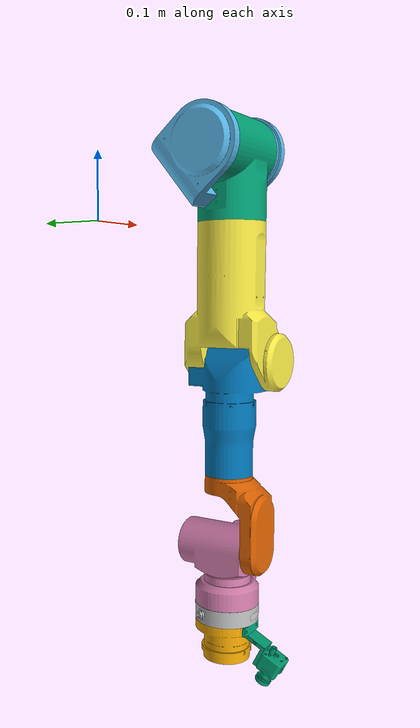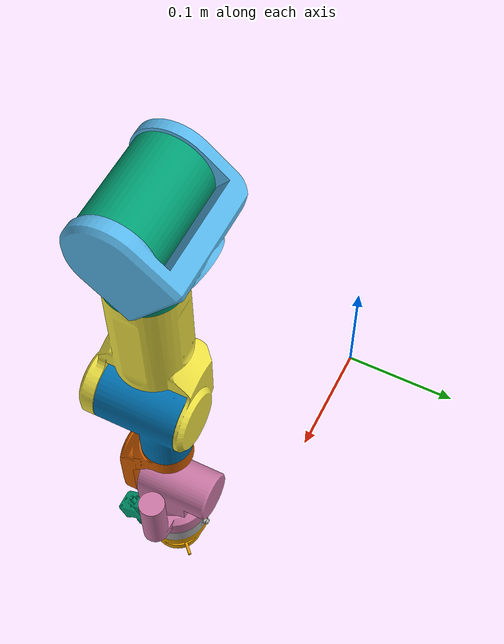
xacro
<?xml version="1.0"?>
<!-- Direct xacro translation of right_arm.urdf. -->
<robot xmlns:xacro="http://www.ros.org/wiki/xacro" name="rby1_right_arm">

  <xacro:arg name="mesh_root" default="ruby/rby1_description_drake/meshes"/>
  <xacro:property name="mesh_dir" value="$(arg mesh_root)"/>

  <!-- Links -->

  <link name="link_right_arm_base"/>

  <link name="link_right_arm_0">
    <inertial>
      <mass value="1.26164242"/>
      <origin rpy="0 0 0" xyz="-0.00316662 0.03437181 -0.00000030"/>
      <inertia ixx="0.00230621" ixy="0.00039024" ixz="-0.00000256" iyy="0.00426418" iyz="0.00000118"
        izz="0.00432156"/>
    </inertial>

    <visual>
      <origin xyz="0 0 0" rpy="1.57079632679 0 0"/>
      <geometry>
        <mesh filename="${mesh_dir}/LINK_7.obj"/>
      </geometry>
    </visual>

    <collision>
      <origin xyz="0.025 0.018 -0.005" rpy="0 0 0"/>
      <geometry>
        <sphere radius="0.075"/>
      </geometry>
    </collision>
    <collision>
      <origin xyz="-0.015 0.018 -0.005" rpy="0 0 0"/>
      <geometry>
        <sphere radius="0.075"/>
      </geometry>
    </collision>
    <collision>
      <origin xyz="-0.05 0.018 -0.005" rpy="0 0 0"/>
      <geometry>
        <sphere radius="0.075"/>
      </geometry>
    </collision>
  </link>

  <link name="link_right_arm_1">
    <inertial>
      <mass value="2.27287031"/>
      <origin rpy="0 0 0" xyz="-0.00307855 -0.00124741 -0.01294324"/>
      <inertia ixx="0.00388490" ixy="-0.00001477" ixz="0.00011465" iyy="0.00447034"
        iyz="-0.00010023" izz="0.00288341"/>
    </inertial>

    <visual>
      <origin xyz="0 0 0" rpy="1.57079632679 0 0"/>
      <geometry>
        <mesh filename="${mesh_dir}/LINK_8.obj"/>
      </geometry>
    </visual>

    <collision>
      <origin xyz="0 0 -0.07" rpy="0 0 0"/>
      <geometry>
        <sphere radius="0.05"/>
      </geometry>
    </collision>
  </link>

  <link name="link_right_arm_2">
    <inertial>
      <mass value="2.46909439"/>
      <origin rpy="0 0 0" xyz="0.00115434 -0.00196635 -0.16192524"/>
      <inertia ixx="0.00980269" ixy="0.00005871" ixz="0.00051888" iyy="0.00924560" iyz="-0.00045932"
        izz="0.00329867"/>
    </inertial>

    <visual>
      <origin xyz="0 0 0" rpy="1.57079632679 0 0"/>
      <geometry>
        <mesh filename="${mesh_dir}/LINK_9.obj"/>
      </geometry>
    </visual>

    <collision>
      <origin xyz="0 0 -0.11" rpy="0 0 0"/>
      <geometry>
        <sphere radius="0.05"/>
      </geometry>
    </collision>
    <collision>
      <origin xyz="0 0 -0.15" rpy="0 0 0"/>
      <geometry>
        <sphere radius="0.05"/>
      </geometry>
    </collision>
    <collision>
      <origin xyz="0 0 -0.19" rpy="0 0 0"/>
      <geometry>
        <sphere radius="0.05"/>
      </geometry>
    </collision>
    <collision>
      <origin xyz="0 0 -0.23" rpy="0 0 0"/>
      <geometry>
        <sphere radius="0.05"/>
      </geometry>
    </collision>

    <collision>
      <origin xyz="0 0.022 -0.24" rpy="0 0 0"/>
      <geometry>
        <sphere radius="0.05"/>
      </geometry>
    </collision>
    <collision>
      <origin xyz="0 -0.02 -0.24" rpy="0 0 0"/>
      <geometry>
        <sphere radius="0.05"/>
      </geometry>
    </collision>

    <collision>
      <origin xyz="0.031 0.042 -0.275" rpy="0 0 0"/>
      <geometry>
        <sphere radius="0.045"/>
      </geometry>
    </collision>
    <collision>
      <origin xyz="0.031 -0.04 -0.275" rpy="0 0 0"/>
      <geometry>
        <sphere radius="0.045"/>
      </geometry>
    </collision>
  </link>

  <link name="link_right_arm_3">
    <inertial>
      <mass value="2.26099493"/>
      <origin rpy="0 0 0" xyz="-0.01603135 -0.00692891 -0.04549811"/>
      <inertia ixx="0.00822606" ixy="0.00027620" ixz="-0.00156570" iyy="0.00844870" iyz="0.00076157"
        izz="0.00236614"/>
    </inertial>

    <visual>
      <origin xyz="0 0 0" rpy="1.57079632679 0 0"/>
      <geometry>
        <mesh filename="${mesh_dir}/LINK_10.obj"/>
      </geometry>
    </visual>

    <collision>
      <origin xyz="-0.015 0 0" rpy="0 0 0"/>
      <geometry>
        <sphere radius="0.06"/>
      </geometry>
    </collision>

    <collision>
      <origin xyz="-0.031 0 -0.06" rpy="0 0 0"/>
      <geometry>
        <sphere radius="0.04"/>
      </geometry>
    </collision>
    <collision>
      <origin xyz="-0.031 0 -0.09" rpy="0 0 0"/>
      <geometry>
        <sphere radius="0.04"/>
      </geometry>
    </collision>
    <collision>
      <origin xyz="-0.031 0 -0.132" rpy="0 0 0"/>
      <geometry>
        <sphere radius="0.04"/>
      </geometry>
    </collision>
  </link>

  <link name="link_right_arm_4">
    <inertial>
      <mass value="0.42508710"/>
      <origin rpy="0 0 0" xyz="-0.00000011 -0.02696036 0.06182110"/>
      <inertia ixx="0.00082466" ixy="0.0" ixz="0.0" iyy="0.00075398" iyz="-0.00025338"
        izz="0.00039794"/>
    </inertial>

    <visual>
      <origin xyz="0 0 0" rpy="1.57079632679 0 0"/>
      <geometry>
        <mesh filename="${mesh_dir}/LINK_11.obj"/>
      </geometry>
    </visual>

    <collision>
      <origin xyz="0 0 0.08" rpy="0 0 0"/>
      <geometry>
        <sphere radius="0.04"/>
      </geometry>
    </collision>

    <collision>
      <origin xyz="0 -0.027 0.07" rpy="0 0 0"/>
      <geometry>
        <sphere radius="0.04"/>
      </geometry>
    </collision>

    <collision>
      <origin xyz="0 -0.032 0.05" rpy="0 0 0"/>
      <geometry>
        <sphere radius="0.04"/>
      </geometry>
    </collision>
    <collision>
      <origin xyz="0 -0.032 0.025" rpy="0 0 0"/>
      <geometry>
        <sphere radius="0.04"/>
      </geometry>
    </collision>
    <collision>
      <origin xyz="0 -0.032 0" rpy="0 0 0"/>
      <geometry>
        <sphere radius="0.04"/>
      </geometry>
    </collision>
  </link>

  <link name="link_right_arm_5">
    <inertial>
      <mass value="1.59194395"/>
      <origin rpy="0 0 0" xyz="0.00318034 -0.00532264 -0.02809655"/>
      <inertia ixx="0.00256054" ixy="-0.00002344" ixz="-0.00001563" iyy="0.00257233"
        iyz="0.00021608" izz="0.00156092"/>
    </inertial>

    <visual>
      <origin xyz="0 0 0" rpy="1.57079632679 0 0"/>
      <geometry>
        <mesh filename="${mesh_dir}/LINK_12.obj"/>
      </geometry>
    </visual>

    <collision>
      <origin xyz="0.02 0 -0.021" rpy="0 0 0"/>
      <geometry>
        <sphere radius="0.065"/>
      </geometry>
    </collision>

    <collision>
      <origin xyz="0 0.04 0" rpy="0 0 0"/>
      <geometry>
        <sphere radius="0.04"/>
      </geometry>
    </collision>

    <collision>
      <origin xyz="0 0 -0.057" rpy="0 0 0"/>
      <geometry>
        <sphere radius="0.05"/>
      </geometry>
    </collision>
  </link>

  <link name="link_right_arm_6">
    <inertial>
      <mass value="0.21137279"/>
      <origin rpy="0 0 0" xyz="0.00066810 -0.00031708 -0.09636043"/>
      <inertia ixx="0.00013511" ixy="-0.00000242" ixz="-0.00000102" iyy="0.00014453"
        iyz="0.00000094" izz="0.00025431"/>
    </inertial>

    <visual>
      <origin xyz="0 0 0" rpy="1.57079632679 0 0"/>
      <geometry>
        <mesh filename="${mesh_dir}/LINK_13.obj"/>
      </geometry>
    </visual>

    <collision>
      <origin xyz="0 0 -0.1" rpy="0 0 0"/>
      <geometry>
        <sphere radius="0.05"/>
      </geometry>
    </collision>
  </link>

  <link name="FT_sensor_R">
    <inertial>
      <mass value="0.49078507"/>
      <origin rpy="0 0 0" xyz="0.00010423 0.00108019 -0.01880676"/>
      <inertia ixx="0.00028587" ixy="-0.00000146" ixz="-0.00000026" iyy="0.00030459"
        iyz="-0.00000772" izz="0.00036377"/>
    </inertial>

    <visual>
      <origin xyz="0 0 0" rpy="1.57079632679 0 0"/>
      <geometry>
        <mesh filename="${mesh_dir}/FT_SENSOR_R.obj"/>
      </geometry>
    </visual>

    <collision>
      <origin xyz="0 0 -0.0275" rpy="0 0 0"/>
      <geometry>
        <sphere radius="0.04"/>
      </geometry>
    </collision>
  </link>

  <link name="ee_right"/>

  <!-- BEGIN: Wrist camera (RealSense), mounted on the FT sensor -->
  <link name="link_right_arm_camera">
    <visual>
      <origin xyz="0 -0.062 -0.038" rpy="0 0 0"/>
      <geometry>
        <mesh filename="${mesh_dir}/rby1_wrist_camera.obj"/>
      </geometry>
    </visual>
    <!-- Simple primitive for collision, matching the rest of the arm. Tune size/origin to the camera envelope. -->
    <collision>
      <origin xyz="0 -0.062 -0.038" rpy="0 0 0"/>
      <geometry>
        <box size="0.040 0.056 0.082"/>
      </geometry>
    </collision>
  </link>
  <!-- END: Wrist camera -->

  <!-- Joints -->

  <joint name="right_arm_0" type="revolute">
    <parent link="link_right_arm_base"/>
    <child link="link_right_arm_0"/>
    <origin rpy="-0.349065850  0.0 0.0" xyz="0.0 -0.220 0.080073451539 "/>
    <axis xyz="0 1 0"/>
    <limit effort="1000.0" lower="-2.35619449" upper="2.35619449" velocity="3.14159265"/>
  </joint>

  <joint name="right_arm_1" type="revolute">
    <parent link="link_right_arm_0"/>
    <child link="link_right_arm_1"/>
    <origin rpy="0.349065850 0.0 0.0" xyz="0.0 0.0 0.0"/>
    <axis xyz="1 0 0"/>
    <limit effort="1000.0" lower="-3.14159265" upper="0.05" velocity="3.14159265"/>
  </joint>

  <joint name="right_arm_2" type="revolute">
    <parent link="link_right_arm_1"/>
    <child link="link_right_arm_2"/>
    <origin rpy="0.0 0.0 0.0" xyz="0.0 0.0 0.0"/>
    <axis xyz="0 0 1"/>
    <limit effort="1000.0" lower="-2.09439510" upper="2.09439510" velocity="3.14159265"/>
  </joint>

  <joint name="right_arm_3" type="revolute">
    <parent link="link_right_arm_2"/>
    <child link="link_right_arm_3"/>
    <origin rpy="0.0 0.0 0.0" xyz="0.031 0.0 -0.276"/>
    <axis xyz="0 1 0"/>
    <limit effort="1000.0" lower="-2.61799388" upper="0.01" velocity="3.14159265"/>
  </joint>

  <joint name="right_arm_4" type="revolute">
    <parent link="link_right_arm_3"/>
    <child link="link_right_arm_4"/>
    <origin rpy="0.0 0.0 0.0" xyz="-0.031 0.0 -0.256"/>
    <axis xyz="0 0 1"/>
    <!-- Reduced from full +-2pi range for camera wires. -->
    <limit effort="1000.0" lower="-3.0" upper="3.0" velocity="3.14159265"/>
  </joint>

  <joint name="right_arm_5" type="revolute">
    <parent link="link_right_arm_4"/>
    <child link="link_right_arm_5"/>
    <origin rpy="0.0 0.0 0.0" xyz="0.0 0.0 0.0"/>
    <axis xyz="0 1 0"/>
    <limit effort="1000.0" lower="-1.74532925" upper="2.00712864" velocity="3.14159265"/>
  </joint>

  <joint name="right_arm_6" type="revolute">
    <parent link="link_right_arm_5"/>
    <child link="link_right_arm_6"/>
    <origin rpy="0.0 0.0 0.0" xyz="0.0 0.0 0.0"/>
    <axis xyz="0 0 1"/>
    <limit effort="1000.0" lower="-2.75" upper="2.75" velocity="3.14159265"/>
  </joint>

  <joint name="tool_right" type="fixed">
    <parent link="link_right_arm_6"/>
    <child link="FT_sensor_R"/>
    <origin rpy="0.0 0.0 0.0" xyz="0.0 0.0 -0.1087"/>
    <axis xyz="0 0 1"/>
  </joint>

  <joint name="FT_Sensor_END_right" type="fixed">
    <parent link="FT_sensor_R"/>
    <child link="ee_right"/>
    <origin rpy="0.0 0.0 0.0" xyz="0.0 0.0 -0.0461"/>
    <axis xyz="0 0 1"/>
  </joint>

  <!-- BEGIN: Wrist camera mount. -->
  <joint name="right_arm_camera_mount" type="fixed">
    <parent link="FT_sensor_R"/>
    <child link="link_right_arm_camera"/>
    <origin rpy="0.0 0.0 0.0" xyz="0.0 0.0 0.0"/>
    <axis xyz="0 0 1"/>
  </joint>
  <!-- END: Wrist camera mount -->

  <!-- Transmissions -->

  <transmission name="right_arm_0_transmission">
    <type>transmission_interface/SimpleTransmission</type>
    <joint name="right_arm_0">
      <hardwareInterface>PositionJointInterface</hardwareInterface>
    </joint>
    <actuator name="right_arm_0_motor">
      <hardwareInterface>PositionJointInterface</hardwareInterface>
      <mechanicalReduction>1</mechanicalReduction>
    </actuator>
  </transmission>

  <transmission name="right_arm_1_transmission">
    <type>transmission_interface/SimpleTransmission</type>
    <joint name="right_arm_1">
      <hardwareInterface>PositionJointInterface</hardwareInterface>
    </joint>
    <actuator name="right_arm_1_motor">
      <hardwareInterface>PositionJointInterface</hardwareInterface>
      <mechanicalReduction>1</mechanicalReduction>
    </actuator>
  </transmission>

  <transmission name="right_arm_2_transmission">
    <type>transmission_interface/SimpleTransmission</type>
    <joint name="right_arm_2">
      <hardwareInterface>PositionJointInterface</hardwareInterface>
    </joint>
    <actuator name="right_arm_2_motor">
      <hardwareInterface>PositionJointInterface</hardwareInterface>
      <mechanicalReduction>1</mechanicalReduction>
    </actuator>
  </transmission>

  <transmission name="right_arm_3_transmission">
    <type>transmission_interface/SimpleTransmission</type>
    <joint name="right_arm_3">
      <hardwareInterface>PositionJointInterface</hardwareInterface>
    </joint>
    <actuator name="right_arm_3_motor">
      <hardwareInterface>PositionJointInterface</hardwareInterface>
      <mechanicalReduction>1</mechanicalReduction>
    </actuator>
  </transmission>

  <transmission name="right_arm_4_transmission">
    <type>transmission_interface/SimpleTransmission</type>
    <joint name="right_arm_4">
      <hardwareInterface>PositionJointInterface</hardwareInterface>
    </joint>
    <actuator name="right_arm_4_motor">
      <hardwareInterface>PositionJointInterface</hardwareInterface>
      <mechanicalReduction>1</mechanicalReduction>
    </actuator>
  </transmission>

  <transmission name="right_arm_5_transmission">
    <type>transmission_interface/SimpleTransmission</type>
    <joint name="right_arm_5">
      <hardwareInterface>PositionJointInterface</hardwareInterface>
    </joint>
    <actuator name="right_arm_5_motor">
      <hardwareInterface>PositionJointInterface</hardwareInterface>
      <mechanicalReduction>1</mechanicalReduction>
    </actuator>
  </transmission>

  <transmission name="right_arm_6_transmission">
    <type>transmission_interface/SimpleTransmission</type>
    <joint name="right_arm_6">
      <hardwareInterface>PositionJointInterface</hardwareInterface>
    </joint>
    <actuator name="right_arm_6_motor">
      <hardwareInterface>PositionJointInterface</hardwareInterface>
      <mechanicalReduction>1</mechanicalReduction>
    </actuator>
  </transmission>

</robot>
